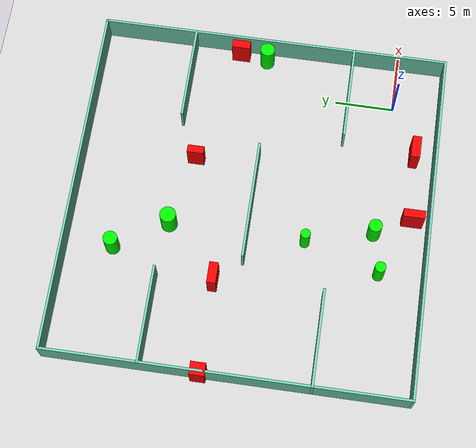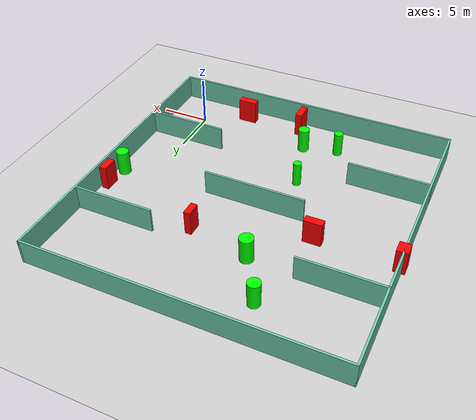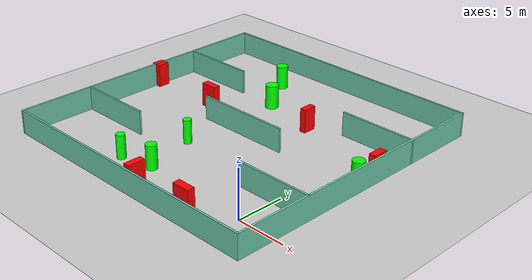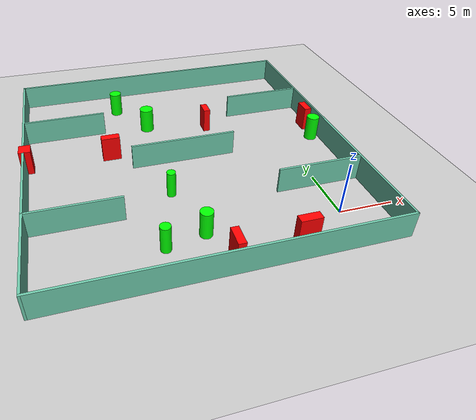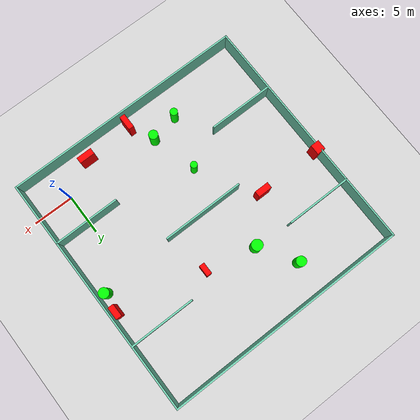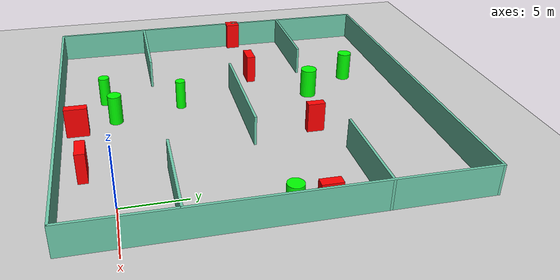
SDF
<sdf version="1.7">
 <world name="default">
  <light name="sun" type="directional">
   <pose>0 0 10 0 -0 0</pose>
   <diffuse>0.8 0.8 0.8 1</diffuse>
   <specular>0.2 0.2 0.2 1</specular>
   <attenuation>
    <range>1000</range>
    <constant>0.9</constant>
    <linear>0.01</linear>
    <quadratic>0.001</quadratic>
   </attenuation>
   <direction>-0.5 0.1 -0.9</direction>
   <spot><inner_angle>0</inner_angle><outer_angle>0</outer_angle><falloff>0</falloff></spot>
  </light>
  <model name="ground_plane">
   <static>1</static>
   <link name="link">
    <collision name="collision">
     <geometry><plane><normal>0 0 1</normal><size>100 100</size></plane></geometry>
     <surface>
      <contact><collide_bitmask>65535</collide_bitmask></contact>
      <friction><ode><mu>100</mu><mu2>50</mu2></ode></friction>
     </surface>
    </collision>
    <visual name="visual">
     <cast_shadows>0</cast_shadows>
     <geometry><plane><normal>0 0 1</normal><size>100 100</size></plane></geometry>
     <material>
      <script><uri>file://media/materials/scripts/gazebo.material</uri><name>Gazebo/Grey</name></script>
     </material>
    </visual>
   </link>
  </model>
  <gravity>0 0 -9.8</gravity>
  <magnetic_field>6e-06 2.3e-05 -4.2e-05</magnetic_field>
  <atmosphere type="adiabatic"/>
  <physics type="ode">
   <max_step_size>0.001</max_step_size>
   <real_time_factor>1</real_time_factor>
   <real_time_update_rate>1000</real_time_update_rate>
  </physics>
  <scene><ambient>0.4 0.4 0.4 1</ambient><background>0.7 0.7 0.7 1</background><shadows>1</shadows></scene>
  <spherical_coordinates>
   <surface_model>EARTH_WGS84</surface_model>
   <latitude_deg>0</latitude_deg>
   <longitude_deg>0</longitude_deg>
   <elevation>0</elevation>
   <heading_deg>0</heading_deg>
  </spherical_coordinates>
  <model name="my_base_walls">
   <link name="Wall_10">
    <collision name="Wall_10_Collision">
     <geometry><box><size>8.2 0.2 2.5</size></box></geometry>
     <pose>0 0 1.25 0 -0 0</pose>
    </collision>
    <visual name="Wall_10_Visual">
     <pose>0 0 1.25 0 -0 0</pose>
     <geometry><box><size>8.2 0.2 2.5</size></box></geometry>
     <material>
      <script><uri>file://media/materials/scripts/gazebo.material</uri><name>Gazebo/Grey</name></script>
      <ambient>0.435294 0.796078 0.67451 1</ambient>
     </material>
     <meta><layer>0</layer></meta>
    </visual>
    <pose>-11 -7 0 0 -0 0</pose>
   </link>
   <link name="Wall_12">
    <collision name="Wall_12_Collision">
     <geometry><box><size>8.2 0.2 2.5</size></box></geometry>
     <pose>0 0 1.25 0 -0 0</pose>
    </collision>
    <visual name="Wall_12_Visual">
     <pose>0 0 1.25 0 -0 0</pose>
     <geometry><box><size>8.2 0.2 2.5</size></box></geometry>
     <material>
      <script><uri>file://media/materials/scripts/gazebo.material</uri><name>Gazebo/Grey</name></script>
      <ambient>0.435294 0.796078 0.67451 1</ambient>
     </material>
     <meta><layer>0</layer></meta>
    </visual>
    <pose>-11 7 0 0 -0 0</pose>
   </link>
   <link name="Wall_14">
    <collision name="Wall_14_Collision">
     <geometry><box><size>8.2 0.2 2.5</size></box></geometry>
     <pose>0 0 1.25 0 -0 0</pose>
    </collision>
    <visual name="Wall_14_Visual">
     <pose>0 0 1.25 0 -0 0</pose>
     <geometry><box><size>8.2 0.2 2.5</size></box></geometry>
     <material>
      <script><uri>file://media/materials/scripts/gazebo.material</uri><name>Gazebo/Grey</name></script>
      <ambient>0.435294 0.796078 0.67451 1</ambient>
     </material>
     <meta><layer>0</layer></meta>
    </visual>
    <pose>11 7 0 0 -0 3.14159</pose>
   </link>
   <link name="Wall_16">
    <collision name="Wall_16_Collision">
     <geometry><box><size>10.2 0.2 2.5</size></box></geometry>
     <pose>0 0 1.25 0 -0 0</pose>
    </collision>
    <visual name="Wall_16_Visual">
     <pose>0 0 1.25 0 -0 0</pose>
     <geometry><box><size>10.2 0.2 2.5</size></box></geometry>
     <material>
      <script><uri>file://media/materials/scripts/gazebo.material</uri><name>Gazebo/Grey</name></script>
      <ambient>0.435294 0.796078 0.67451 1</ambient>
     </material>
     <meta><layer>0</layer></meta>
    </visual>
    <pose>0 0 0 0 -0 3.14159</pose>
   </link>
   <link name="Wall_2">
    <collision name="Wall_2_Collision">
     <geometry><box><size>30.2 0.2 2.5</size></box></geometry>
     <pose>0 0 1.25 0 -0 0</pose>
    </collision>
    <visual name="Wall_2_Visual">
     <pose>0 0 1.25 0 -0 0</pose>
     <geometry><box><size>30.2 0.2 2.5</size></box></geometry>
     <material>
      <script><uri>file://media/materials/scripts/gazebo.material</uri><name>Gazebo/Grey</name></script>
      <ambient>0.435294 0.796078 0.67451 1</ambient>
     </material>
     <meta><layer>0</layer></meta>
    </visual>
    <pose>0 -15 0 0 -0 3.14159</pose>
   </link>
   <link name="Wall_3">
    <collision name="Wall_3_Collision">
     <geometry><box><size>30.2 0.2 2.5</size></box></geometry>
     <pose>0 0 1.25 0 -0 0</pose>
    </collision>
    <visual name="Wall_3_Visual">
     <pose>0 0 1.25 0 -0 0</pose>
     <geometry><box><size>30.2 0.2 2.5</size></box></geometry>
     <material>
      <script><uri>file://media/materials/scripts/gazebo.material</uri><name>Gazebo/Grey</name></script>
      <ambient>0.435294 0.796078 0.67451 1</ambient>
     </material>
     <meta><layer>0</layer></meta>
    </visual>
    <pose>-15 0 0 0 -0 1.5708</pose>
   </link>
   <link name="Wall_4">
    <collision name="Wall_4_Collision">
     <geometry><box><size>30.2 0.2 2.5</size></box></geometry>
     <pose>0 0 1.25 0 -0 0</pose>
    </collision>
    <visual name="Wall_4_Visual">
     <pose>0 0 1.25 0 -0 0</pose>
     <geometry><box><size>30.2 0.2 2.5</size></box></geometry>
     <material>
      <script><uri>file://media/materials/scripts/gazebo.material</uri><name>Gazebo/Grey</name></script>
      <ambient>0.435294 0.796078 0.67451 1</ambient>
     </material>
     <meta><layer>0</layer></meta>
    </visual>
    <pose>0 15 0 0 -0 0</pose>
   </link>
   <link name="Wall_6">
    <collision name="Wall_6_Collision">
     <geometry><box><size>30.2 0.2 2.5</size></box></geometry>
     <pose>0 0 1.25 0 -0 0</pose>
    </collision>
    <visual name="Wall_6_Visual">
     <pose>0 0 1.25 0 -0 0</pose>
     <geometry><box><size>30.2 0.2 2.5</size></box></geometry>
     <material>
      <script><uri>file://media/materials/scripts/gazebo.material</uri><name>Gazebo/Grey</name></script>
      <ambient>0.435294 0.796078 0.67451 1</ambient>
     </material>
     <meta><layer>0</layer></meta>
    </visual>
    <pose>15 0 0 0 -0 1.5708</pose>
   </link>
   <link name="Wall_8">
    <collision name="Wall_8_Collision">
     <geometry><box><size>8.2 0.2 2.5</size></box></geometry>
     <pose>0 0 1.25 0 -0 0</pose>
    </collision>
    <visual name="Wall_8_Visual">
     <pose>0 0 1.25 0 -0 0</pose>
     <geometry><box><size>8.2 0.2 2.5</size></box></geometry>
     <material>
      <script><uri>file://media/materials/scripts/gazebo.material</uri><name>Gazebo/Grey</name></script>
      <ambient>0.435294 0.796078 0.67451 1</ambient>
     </material>
     <meta><layer>0</layer></meta>
    </visual>
    <pose>11 -7 0 0 -0 3.14159</pose>
   </link>
   <static>1</static>
   <pose>-11 11 0 0 -0 0</pose>
  </model>
  <model name="cylinder1">
   <static>1</static>
   <link name="link">
    <inertial>
     <mass>1</mass>
     <inertia><ixx>0.5</ixx><ixy>0</ixy><ixz>0</ixz><iyy>0.5</iyy><iyz>0</iyz><izz>1</izz></inertia>
    </inertial>
    <collision name="collision">
     <geometry><cylinder><radius>0.6245989059464023</radius><length>2.5</length></cylinder></geometry>
    </collision>
    <visual name="visual">
     <geometry><cylinder><radius>0.6245989059464023</radius><length>2.5</length></cylinder></geometry>
     <material>
      <ambient>0 1 0 1</ambient>
      <diffuse>0 1 0 1</diffuse>
      <specular>0.1 0.1 0.1 1</specular>
      <emissive>0 0 0 0</emissive>
     </material>
    </visual>
   </link>
   <pose>3.072297469770472 11.544254456555047 1.25 0 0 0</pose>
  </model>
  <model name="cylinder2">
   <static>1</static>
   <link name="link">
    <inertial>
     <mass>1</mass>
     <inertia><ixx>0.5</ixx><ixy>0</ixy><ixz>0</ixz><iyy>0.5</iyy><iyz>0</iyz><izz>1</izz></inertia>
    </inertial>
    <collision name="collision">
     <geometry><cylinder><radius>0.4133337394319361</radius><length>2.5</length></cylinder></geometry>
    </collision>
    <visual name="visual">
     <geometry><cylinder><radius>0.4133337394319361</radius><length>2.5</length></cylinder></geometry>
     <material>
      <ambient>0 1 0 1</ambient>
      <diffuse>0 1 0 1</diffuse>
      <specular>0.1 0.1 0.1 1</specular>
      <emissive>0 0 0 0</emissive>
     </material>
    </visual>
   </link>
   <pose>-13.438589987463246 6.11923573522839 1.25 0 0 0</pose>
  </model>
  <model name="cylinder3">
   <static>1</static>
   <link name="link">
    <inertial>
     <mass>1</mass>
     <inertia><ixx>0.5</ixx><ixy>0</ixy><ixz>0</ixz><iyy>0.5</iyy><iyz>0</iyz><izz>1</izz></inertia>
    </inertial>
    <collision name="collision">
     <geometry><cylinder><radius>0.6838247409161277</radius><length>2.5</length></cylinder></geometry>
    </collision>
    <visual name="visual">
     <geometry><cylinder><radius>0.6838247409161277</radius><length>2.5</length></cylinder></geometry>
     <material>
      <ambient>0 1 0 1</ambient>
      <diffuse>0 1 0 1</diffuse>
      <specular>0.1 0.1 0.1 1</specular>
      <emissive>0 0 0 0</emissive>
     </material>
    </visual>
   </link>
   <pose>-13.385562915098244 17.65751803529171 1.25 0 0 0</pose>
  </model>
  <model name="cylinder4">
   <static>1</static>
   <link name="link">
    <inertial>
     <mass>1</mass>
     <inertia><ixx>0.5</ixx><ixy>0</ixy><ixz>0</ixz><iyy>0.5</iyy><iyz>0</iyz><izz>1</izz></inertia>
    </inertial>
    <collision name="collision">
     <geometry><cylinder><radius>0.6056836747550636</radius><length>2.5</length></cylinder></geometry>
    </collision>
    <visual name="visual">
     <geometry><cylinder><radius>0.6056836747550636</radius><length>2.5</length></cylinder></geometry>
     <material>
      <ambient>0 1 0 1</ambient>
      <diffuse>0 1 0 1</diffuse>
      <specular>0.1 0.1 0.1 1</specular>
      <emissive>0 0 0 0</emissive>
     </material>
    </visual>
   </link>
   <pose>-16.09561923506513 22.012482104605297 1.25 0 0 0</pose>
  </model>
  <model name="cylinder5">
   <static>1</static>
   <link name="link">
    <inertial>
     <mass>1</mass>
     <inertia><ixx>0.5</ixx><ixy>0</ixy><ixz>0</ixz><iyy>0.5</iyy><iyz>0</iyz><izz>1</izz></inertia>
    </inertial>
    <collision name="collision">
     <geometry><cylinder><radius>0.46318829813460854</radius><length>2.5</length></cylinder></geometry>
    </collision>
    <visual name="visual">
     <geometry><cylinder><radius>0.46318829813460854</radius><length>2.5</length></cylinder></geometry>
     <material>
      <ambient>0 1 0 1</ambient>
      <diffuse>0 1 0 1</diffuse>
      <specular>0.1 0.1 0.1 1</specular>
      <emissive>0 0 0 0</emissive>
     </material>
    </visual>
   </link>
   <pose>-15.435224176947425 -0.2961699747654629 1.25 0 0 0</pose>
  </model>
  <model name="cylinder6">
   <static>1</static>
   <link name="link">
    <inertial>
     <mass>1</mass>
     <inertia><ixx>0.5</ixx><ixy>0</ixy><ixz>0</ixz><iyy>0.5</iyy><iyz>0</iyz><izz>1</izz></inertia>
    </inertial>
    <collision name="collision">
     <geometry><cylinder><radius>0.5658379203223811</radius><length>2.5</length></cylinder></geometry>
    </collision>
    <visual name="visual">
     <geometry><cylinder><radius>0.5658379203223811</radius><length>2.5</length></cylinder></geometry>
     <material>
      <ambient>0 1 0 1</ambient>
      <diffuse>0 1 0 1</diffuse>
      <specular>0.1 0.1 0.1 1</specular>
      <emissive>0 0 0 0</emissive>
     </material>
    </visual>
   </link>
   <pose>-11.913798843240933 0.4663506434230107 1.25 0 0 0</pose>
  </model>
  <model name="box1">
   <static>1</static>
   <link name="link">
    <inertial>
     <mass>1</mass>
     <inertia><ixx>0.083</ixx><ixy>0</ixy><ixz>0</ixz><iyy>0.083</iyy><iyz>0</iyz><izz>0.083</izz></inertia>
    </inertial>
    <collision name="collision">
     <geometry><box><size>1.918272175483973 0.7633778792010844 2.5</size></box></geometry>
    </collision>
    <visual name="visual">
     <geometry><box><size>1.918272175483973 0.7633778792010844 2.5</size></box></geometry>
     <material>
      <ambient>1 0 0 1</ambient>
      <diffuse>1 0 0 1</diffuse>
      <specular>0.1 0.1 0.1 1</specular>
      <emissive>0 0 0 0</emissive>
     </material>
    </visual>
    <sensor name="my_contact" type="contact">
     <contact><collision>box_collision</collision><topic>__default_topic__</topic></contact>
    </sensor>
   </link>
   <pose>-4.3292468657223235 -2.224667026366892 1.25 0 0 0</pose>
  </model>
  <model name="box2">
   <static>1</static>
   <link name="link">
    <inertial>
     <mass>1</mass>
     <inertia><ixx>0.083</ixx><ixy>0</ixy><ixz>0</ixz><iyy>0.083</iyy><iyz>0</iyz><izz>0.083</izz></inertia>
    </inertial>
    <collision name="collision">
     <geometry><box><size>0.6505677320336087 1.4129784381239205 2.5</size></box></geometry>
    </collision>
    <visual name="visual">
     <geometry><box><size>0.6505677320336087 1.4129784381239205 2.5</size></box></geometry>
     <material>
      <ambient>1 0 0 1</ambient>
      <diffuse>1 0 0 1</diffuse>
      <specular>0.1 0.1 0.1 1</specular>
      <emissive>0 0 0 0</emissive>
     </material>
    </visual>
    <sensor name="my_contact" type="contact">
     <contact><collision>box_collision</collision><topic>__default_topic__</topic></contact>
    </sensor>
   </link>
   <pose>-7.224574890803705 16.297744851385815 1.25 0 0 0</pose>
  </model>
  <model name="box3">
   <static>1</static>
   <link name="link">
    <inertial>
     <mass>1</mass>
     <inertia><ixx>0.083</ixx><ixy>0</ixy><ixz>0</ixz><iyy>0.083</iyy><iyz>0</iyz><izz>0.083</izz></inertia>
    </inertial>
    <collision name="collision">
     <geometry><box><size>1.7771456448856402 0.7543565742060906 2.5</size></box></geometry>
    </collision>
    <visual name="visual">
     <geometry><box><size>1.7771456448856402 0.7543565742060906 2.5</size></box></geometry>
     <material>
      <ambient>1 0 0 1</ambient>
      <diffuse>1 0 0 1</diffuse>
      <specular>0.1 0.1 0.1 1</specular>
      <emissive>0 0 0 0</emissive>
     </material>
    </visual>
    <sensor name="my_contact" type="contact">
     <contact><collision>box_collision</collision><topic>__default_topic__</topic></contact>
    </sensor>
   </link>
   <pose>-17.835633857555006 13.201768049660092 1.25 0 0 0</pose>
  </model>
  <model name="box4">
   <static>1</static>
   <link name="link">
    <inertial>
     <mass>1</mass>
     <inertia><ixx>0.083</ixx><ixy>0</ixy><ixz>0</ixz><iyy>0.083</iyy><iyz>0</iyz><izz>0.083</izz></inertia>
    </inertial>
    <collision name="collision">
     <geometry><box><size>1.088658691705414 1.246782479665009 2.5</size></box></geometry>
    </collision>
    <visual name="visual">
     <geometry><box><size>1.088658691705414 1.246782479665009 2.5</size></box></geometry>
     <material>
      <ambient>1 0 0 1</ambient>
      <diffuse>1 0 0 1</diffuse>
      <specular>0.1 0.1 0.1 1</specular>
      <emissive>0 0 0 0</emissive>
     </material>
    </visual>
    <sensor name="my_contact" type="contact">
     <contact><collision>box_collision</collision><topic>__default_topic__</topic></contact>
    </sensor>
   </link>
   <pose>-25.87354479845652 13.173201424432001 1.25 0 0 0</pose>
  </model>
  <model name="box5">
   <static>1</static>
   <link name="link">
    <inertial>
     <mass>1</mass>
     <inertia><ixx>0.083</ixx><ixy>0</ixy><ixz>0</ixz><iyy>0.083</iyy><iyz>0</iyz><izz>0.083</izz></inertia>
    </inertial>
    <collision name="collision">
     <geometry><box><size>0.7260287017288507 1.5722274420757032 2.5</size></box></geometry>
    </collision>
    <visual name="visual">
     <geometry><box><size>0.7260287017288507 1.5722274420757032 2.5</size></box></geometry>
     <material>
      <ambient>1 0 0 1</ambient>
      <diffuse>1 0 0 1</diffuse>
      <specular>0.1 0.1 0.1 1</specular>
      <emissive>0 0 0 0</emissive>
     </material>
    </visual>
    <sensor name="my_contact" type="contact">
     <contact><collision>box_collision</collision><topic>__default_topic__</topic></contact>
    </sensor>
   </link>
   <pose>3.3046784616843254 13.895005088599177 1.25 0 0 0</pose>
  </model>
  <model name="box6">
   <static>1</static>
   <link name="link">
    <inertial>
     <mass>1</mass>
     <inertia><ixx>0.083</ixx><ixy>0</ixy><ixz>0</ixz><iyy>0.083</iyy><iyz>0</iyz><izz>0.083</izz></inertia>
    </inertial>
    <collision name="collision">
     <geometry><box><size>0.6860697331095531 1.8232324544017655 2.5</size></box></geometry>
    </collision>
    <visual name="visual">
     <geometry><box><size>0.6860697331095531 1.8232324544017655 2.5</size></box></geometry>
     <material>
      <ambient>1 0 0 1</ambient>
      <diffuse>1 0 0 1</diffuse>
      <specular>0.1 0.1 0.1 1</specular>
      <emissive>0 0 0 0</emissive>
     </material>
    </visual>
    <sensor name="my_contact" type="contact">
     <contact><collision>box_collision</collision><topic>__default_topic__</topic></contact>
    </sensor>
   </link>
   <pose>-10.411179936620924 -2.624868159862766 1.25 0 0 0</pose>
  </model>
 </world>
</sdf>
